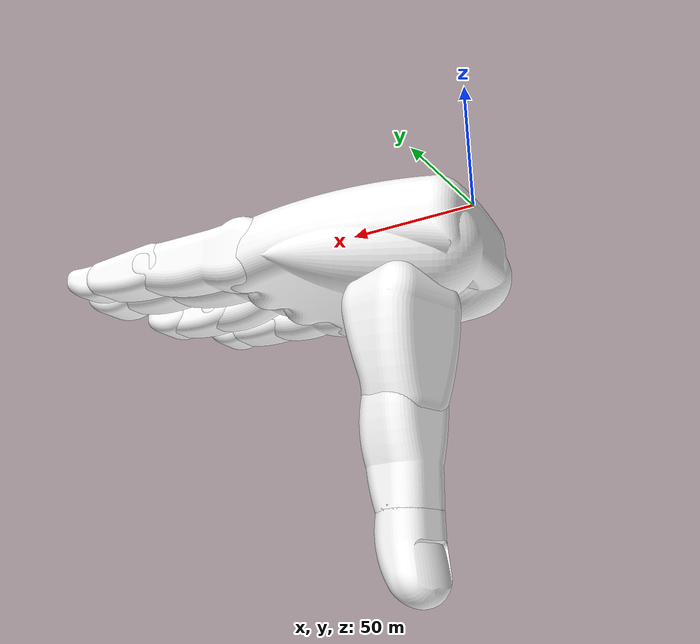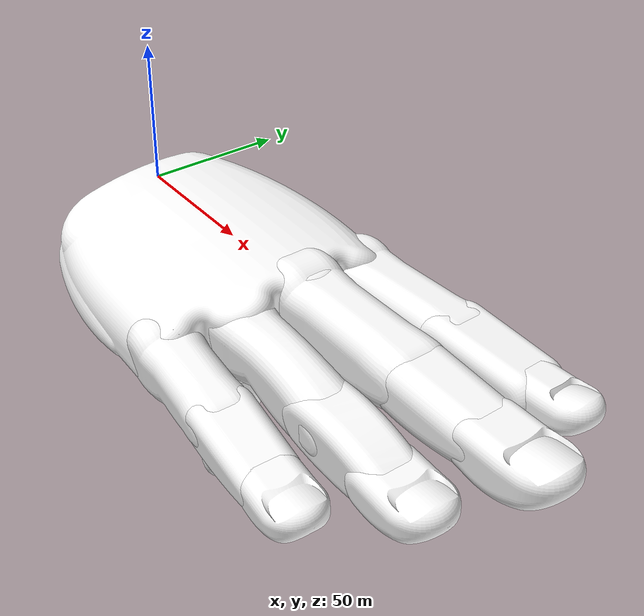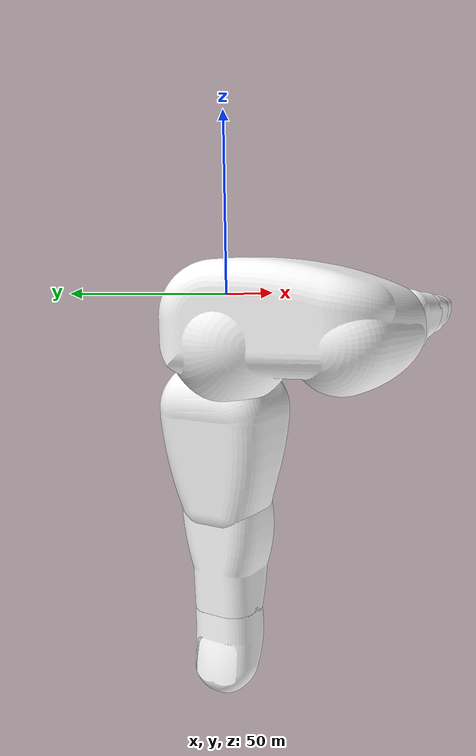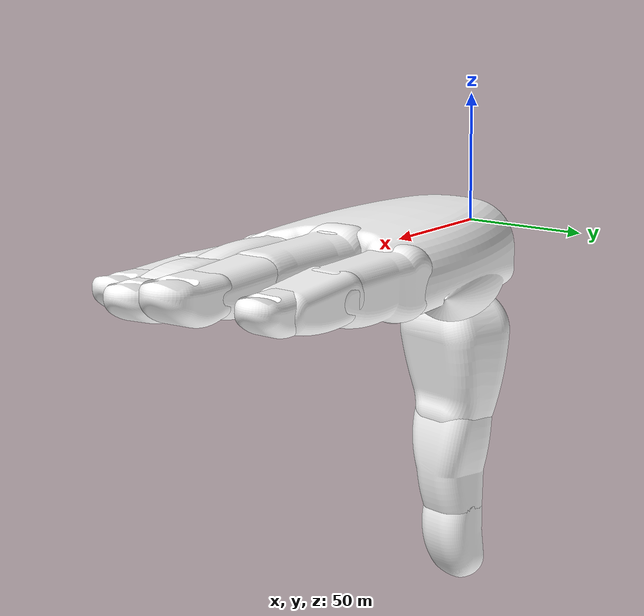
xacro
<?xml version="1.0"?>
<robot name="Bionico Hand" xmlns:xacro="http://www.ros.org/wiki/xacro" >

<!-- GLOBAL Variable -->
<xacro:property name="degToRad" value="${pi/180}" />
<xacro:property name="PI_2" value="${pi/2}" />

<!-- INDEX Position and Length-->
<xacro:property name="Index_Proximal_Lenght" value="44" />
<xacro:property name="Index_Middle_Lenght" value="28" />
<xacro:property name="IndexMcp_origin">
  <origin xyz="86 23 -4" rpy="${-2.5*degToRad} 0 ${3.0*degToRad}" />
</xacro:property>
<xacro:property name="IndexPip_origin">
  <origin xyz="${Index_Proximal_Lenght} 0 0" rpy="0 0 0" />
</xacro:property>
<xacro:property name="IndexDip_origin">
  <origin xyz="${Index_Middle_Lenght} 0 0" rpy="0 0 0" />
</xacro:property>

<!-- MIDDLE Position and Length-->
<xacro:property name="Middle_Proximal_Lenght" value="47" />
<xacro:property name="Middle_Middle_Lenght" value="32" />
<xacro:property name="MiddleMcp_origin">
  <origin xyz="89 0 0" rpy="0 0 0" />
</xacro:property>
<xacro:property name="MiddlePip_origin">
  <origin xyz="${Middle_Proximal_Lenght} 0 0" rpy="0 0 0" />
</xacro:property>
<xacro:property name="MiddleDip_origin">
  <origin xyz="${Middle_Middle_Lenght} 0 0" rpy="0 0 0" />
</xacro:property>

<!-- RING Position and Length-->
<xacro:property name="Ring_Proximal_Lenght" value="44" />
<xacro:property name="Ring_Middle_Lenght" value="28" />
<xacro:property name="RingMcp_origin">
  <origin xyz="88 -23 -6" rpy="${2.5*degToRad} 0 ${-3.0*degToRad}" />
</xacro:property>
<xacro:property name="RingPip_origin">
  <origin xyz="${Ring_Proximal_Lenght} 0 0" rpy="0 0 0" />
</xacro:property>
<xacro:property name="RingDip_origin">
  <origin xyz="${Ring_Middle_Lenght} 0 0" rpy="0 0 0" />
</xacro:property>

<!-- PINKY Position and Length-->
<xacro:property name="Pinky_Proximal_Lenght" value="38" />
<xacro:property name="Pinky_Middle_Lenght" value="25" />
<xacro:property name="PinkyMcp_origin">
  <origin xyz="78 -43 -9" rpy="${4.5*degToRad} 0 ${-6.0*degToRad}" />
</xacro:property>
<xacro:property name="PinkyPip_origin">
  <origin xyz="${Pinky_Proximal_Lenght} 0 0" rpy="0 0 0" />
</xacro:property>
<xacro:property name="PinkyDip_origin">
  <origin xyz="${Pinky_Middle_Lenght} 0 0" rpy="0 0 0" />
</xacro:property>

<!-- THUMB Position and Length-->
<xacro:property name="Thumb_Carpal_Lenght" value="10" />
<xacro:property name="Thumb_MetaCarpal_Lenght" value="35" />
<xacro:property name="Thumb_Proximal_Lenght" value="38" />

<!-- COLOR -->
  <material name="white">
    <color rgba="1 1 1 1"/>
  </material>

<!-- FINGER LINK Macro-->
<xacro:macro name="finger_link" params="fingerName">
  <link name="${fingerName}_Proximal">
    <visual>
      <origin xyz="0 0 0" rpy="${PI_2} 0 0" />
      <geometry>
        <mesh filename="package://hand_description/meshes/MHK_01_${fingerName}_Proximal.STL" scale="1.0 1.0 1.0"/>
      </geometry>
      <material name="white"/>
    </visual>
  </link>

  <link name="${fingerName}_Middle">
    <visual>
      <origin xyz="0 0 0" rpy="${PI_2} 0 0" />
      <geometry>
        <mesh filename="package://hand_description/meshes/MHK_01_${fingerName}_Middle.STL" scale="1.0 1.0 1.0"/>
      </geometry>
      <material name="white"/>
    </visual>
  </link>

  <link name="${fingerName}_Distal">
    <visual>
      <origin xyz="0 0 0" rpy="${PI_2} 0 0" />
      <geometry>
        <mesh filename="package://hand_description/meshes/MHK_01_${fingerName}_Distal.STL" scale="1.0 1.0 1.0"/>
      </geometry>
      <material name="white"/>
    </visual>
  </link>
</xacro:macro>

<!-- FINGER JOINT Macro-->
<xacro:macro name="finger_joint" params="fingerName *origin_Mcp *origin_Pip *origin_Dip">
  <joint name="${fingerName}Mcp" type="continuous">
    <parent link="palm"/>
    <child link="${fingerName}_Proximal"/>
    <xacro:insert_block name="origin_Mcp" />
    <axis xyz="0.0 1.0 0.0" />
  </joint>

  <joint name="${fingerName}Pip" type="continuous">
    <parent link="${fingerName}_Proximal"/>
    <child link="${fingerName}_Middle"/>
    <xacro:insert_block name="origin_Pip" />
    <axis xyz="0.0 1.0 0.0" />
  </joint>

  <joint name="${fingerName}Dip" type="continuous">
    <parent link="${fingerName}_Middle"/>
    <child link="${fingerName}_Distal"/>
    <xacro:insert_block name="origin_Dip" />
    <axis xyz="0.0 1.0 0.0" />
  </joint>
</xacro:macro>

<!-- PALM LINK-->
  <link name="palm">
    <visual>
      <origin xyz="0 0 0" rpy="0 0 0" />
      <geometry>
        <mesh filename="package://hand_description/meshes/MHK_01_Palm.STL" scale="1.0 1.0 1.0"/>
      </geometry>
      <material name="white"/>
    </visual>
  </link>

<!-- FINGER LINK-->
  <xacro:finger_link fingerName="Index"/>
  <xacro:finger_link fingerName="Middle"/>
  <xacro:finger_link fingerName="Ring"/>
  <xacro:finger_link fingerName="Pinky"/>

<!-- FINGER JOINTS-->
  <xacro:finger_joint fingerName="Index">
    <xacro:insert_block name="IndexMcp_origin" />
    <xacro:insert_block name="IndexPip_origin" />
    <xacro:insert_block name="IndexDip_origin" />
  </xacro:finger_joint>

  <xacro:finger_joint fingerName="Middle">
    <xacro:insert_block name="MiddleMcp_origin" />
    <xacro:insert_block name="MiddlePip_origin" />
    <xacro:insert_block name="MiddleDip_origin" />
  </xacro:finger_joint>

  <xacro:finger_joint fingerName="Ring">
    <xacro:insert_block name="RingMcp_origin" />
    <xacro:insert_block name="RingPip_origin" />
    <xacro:insert_block name="RingDip_origin" />
  </xacro:finger_joint>

  <xacro:finger_joint fingerName="Pinky">
    <xacro:insert_block name="PinkyMcp_origin" />
    <xacro:insert_block name="PinkyPip_origin" />
    <xacro:insert_block name="PinkyDip_origin" />
  </xacro:finger_joint>

<!-- THUMB LINK -->
  <link name="Thumb_Carpal">
    <visual>
      <origin xyz="0 0 0" rpy="0 0 0" />
      <geometry>
        <sphere radius="3"/>
      </geometry>
    </visual>
  </link>

  <link name="Thumb_MetaCarpal">
    <visual>
      <origin xyz="0 0 0" rpy="0 ${PI_2} 0" />
      <geometry>
        <mesh filename="package://hand_description/meshes/MHK_01_Thumb_MetaCarpal.STL" scale="1.0 1.0 1.0"/>
      </geometry>
      <material name="white"/>
    </visual>
  </link>

  <link name="Thumb_Proximal">
    <visual>
      <origin xyz="0 0 0" rpy="0 ${PI_2} 0" />
      <geometry>
        <mesh filename="package://hand_description/meshes/MHK_01_Thumb_Proximal.STL" scale="1.0 1.0 1.0"/>
      </geometry>
      <material name="white"/>
    </visual>
  </link>

  <link name="Thumb_Distal">
    <visual>
      <origin xyz="0 0 0" rpy="0 ${PI_2} 0" />
      <geometry>
        <mesh filename="package://hand_description/meshes/MHK_01_Thumb_Distal.STL" scale="1.0 1.0 1.0"/>
      </geometry>
      <material name="white"/>
    </visual>
  </link>

<!-- THUMB JOINT -->
  <joint name="ThumbCarpal" type="continuous">
    <parent link="palm"/>
    <child link="Thumb_Carpal"/>
    <origin xyz="26 10 -26" rpy="0 0 ${165.0*degToRad}" />
    <axis xyz="1.0 0.0 0.0" />
  </joint>

  <joint name="ThumbMcp" type="continuous">
    <parent link="Thumb_Carpal"/>
    <child link="Thumb_MetaCarpal"/>
    <origin xyz="0 0 -${Thumb_Carpal_Lenght}" rpy="0 0 0" />
    <axis xyz="0.0 1.0 0.0" />
  </joint>

  <joint name="ThumbPip" type="continuous">
    <parent link="Thumb_MetaCarpal"/>
    <child link="Thumb_Proximal"/>
    <origin xyz="0 0 -${Thumb_MetaCarpal_Lenght}" rpy="0 0 0" />
    <axis xyz="0.0 1.0 0.0" />
  </joint>

  <joint name="ThumbDip" type="continuous">
    <parent link="Thumb_Proximal"/>
    <child link="Thumb_Distal"/>
    <origin xyz="0 0 -${Thumb_Proximal_Lenght}" rpy="0 0 0" />
    <axis xyz="0.0 1.0 0.0" />
  </joint>

</robot>
